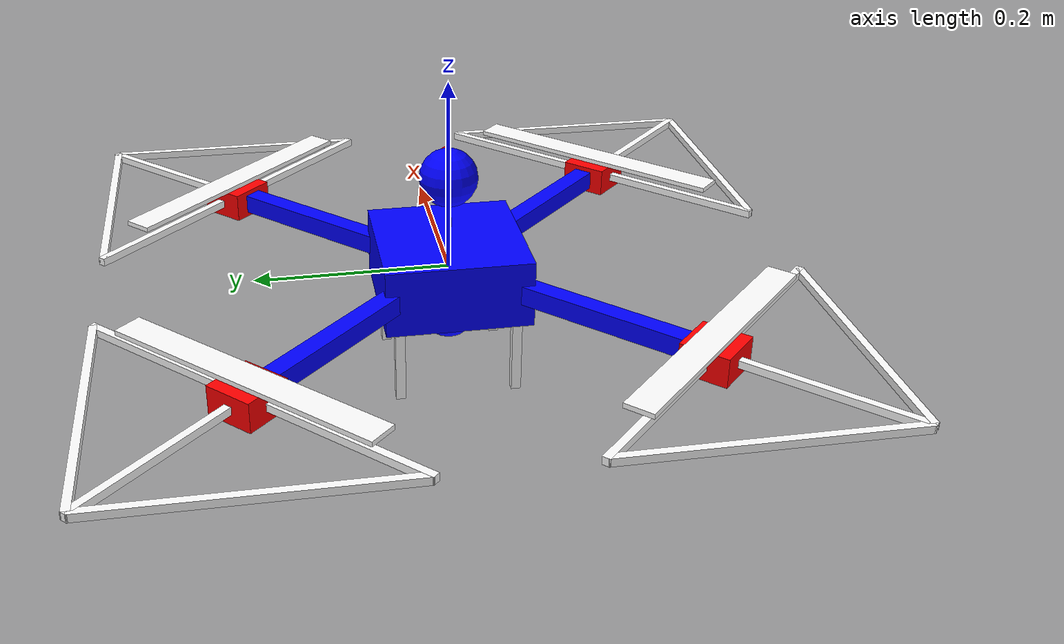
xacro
<robot name="quadcopter_wrs"
  xmlns:xacro="http://ros.org/wiki/xacro">
  <xacro:property name="side" value="0.5"/>

  <link name="BODY">
    <visual>
      <origin rpy="0 0 0" xyz="0 0 0"/>
      <geometry>
        <box size="0.15 0.15 0.07"/>
      </geometry>
      <material name="blue">
        <color rgba="0.0 0.0 1.0 1.0"/>
      </material>
    </visual>
  </link>

  <joint name="CAMERA_2" type="revolute">
    <parent link="BODY"/>
    <child link="CAMERA_2"/>
    <origin xyz="0 0 -0.05"/>
    <limit lower="${-pi}" upper="0" velocity="${pi/2}" effort="1"/>
    <axis xyz="0 -1 0"/>
  </joint>

  <joint name="CAMERA_3" type="revolute">
    <parent link="BODY"/>
    <child link="CAMERA_3"/>
    <origin xyz="0 0 0.10"/>
    <limit lower="${-pi}" upper="0" velocity="${pi/2}" effort="1"/>
    <axis xyz="0 -1 0"/>
  </joint>

  <link name="CAMERA_2">
    <visual>
      <origin rpy="0 0 0" xyz="0 0 0"/>
      <geometry>
        <sphere radius="0.03"/>
      </geometry>
      <material name="blue"/>
    </visual>
  </link>

  <joint name="CameraJoint" type="fixed">
    <parent link="CAMERA_2"/>
    <child link="Camera"/>
    <origin xyz="0.03 0 0" rpy="${-pi/2} 0 ${-pi/2}"/>
  </joint>

  <link name="Camera">
    <visual>
      <geometry>
        <cylinder radius="0.003" length="0.01"/>
      </geometry>
      <material name="red">
        <color rgba="1.0 0.0 0.0 1.0"/>
      </material>
    </visual>
  </link>

  <joint name="Camera2Joint" type="fixed">
    <parent link="CAMERA_2"/>
    <child link="Camera2"/>
    <origin xyz="0.02 0 -0.02" rpy="${-pi/2} 0 ${-pi/2}"/>
  </joint>

  <link name="Camera2">
    <visual>
      <geometry>
        <cylinder radius="0.003" length="0.01"/>
      </geometry>
      <material name="red"/>
    </visual>
  </link>

  <joint name="UpperRangeSensorJoint" type="fixed">
    <parent link="BODY"/>
    <child link="UpperRangeSensor"/>
    <origin xyz="0.00 0 0.05" rpy="0 0 0"/>
  </joint>

  <link name="UpperRangeSensor">
    <visual>
      <geometry>
        <cylinder radius="0.003" length="0.01"/>
      </geometry>
      <material name="red">
        <color rgba="1.0 0.0 0.0 1.0"/>
      </material>
    </visual>
  </link>

  <link name="CAMERA_3">
    <visual>
      <origin rpy="0 0 0" xyz="0 0 0"/>
      <geometry>
        <sphere radius="0.03"/>
      </geometry>
      <material name="blue"/>
    </visual>
  </link>

  <joint name="Camera3Joint" type="fixed">
    <parent link="CAMERA_3"/>
    <child link="Camera3"/>
    <origin xyz="0.02 0 0.02" rpy="${-pi/2} 0 ${-pi/2}"/>
  </joint>

  <link name="Camera3">
    <visual>
      <geometry>
        <cylinder radius="0.003" length="0.01"/>
      </geometry>
      <material name="red"/>
    </visual>
  </link>

  <!-- Legs -->
  <xacro:macro name="leg" params="name translation">
    <joint name="${name}Joint" type="fixed">
      <parent link="BODY"/>
      <child link="${name}"/>
      <origin xyz="${translation}"/>
    </joint>

    <link name="${name}">
      <visual>
        <geometry>
          <box size="0.01 0.01 0.08"/>
        </geometry>
        <material name="white">
          <color rgba="1.0 1.0 1.0 1.0"/>
        </material>
      </visual>
    </link>
  </xacro:macro>

  <xacro:leg name="LEG0" translation="0.06 -0.06 -0.075"/>
  <xacro:leg name="LEG1" translation="0.06 0.06 -0.075"/>
  <xacro:leg name="LEG2" translation="-0.06 0.06 -0.075"/>
  <xacro:leg name="LEG3" translation="-0.06 -0.06 -0.075"/>

  <!-- Arms -->
  <xacro:macro name="arm" params="name rotation">
    <joint name="${name}Joint" type="fixed">
      <parent link="BODY"/>
      <child link="${name}"/>
      <origin rpy="${rotation}"/>
    </joint>

    <link name="${name}">
      <visual>
        <geometry>
          <box size="0.02 0.6 0.02"/>
        </geometry>
        <material name="blue"/>
      </visual>
    </link>
  </xacro:macro>

  <xacro:arm name="ARM02" rotation="0 0 ${pi/4}"/>
  <xacro:arm name="ARM13" rotation="0 0 ${-pi/4}"/>

  <!-- Rotors -->
  <xacro:macro name="rotor" params="name parent translation">
    <joint name="${name}Joint" type="fixed">
      <parent link="${parent}"/>
      <child link="${name}"/>
      <origin xyz="${translation}"/>
    </joint>

    <link name="${name}">
      <visual>
        <geometry>
          <box size="0.05 0.05 0.03"/>
        </geometry>
        <material name="red"/>
      </visual>
    </link>
  </xacro:macro>

  <xacro:rotor name="ROTOR0" parent="ARM02" translation="0 -0.3 0"/>
  <xacro:rotor name="ROTOR1" parent="ARM13" translation="0 0.3 0"/>
  <xacro:rotor name="ROTOR2" parent="ARM02" translation="0 0.3 0"/>
  <xacro:rotor name="ROTOR3" parent="ARM13" translation="0 -0.3 0"/>

  <!-- Propellers -->
  <xacro:macro name="propeller" params="name parent">
    <joint name="${name}Joint" type="fixed">
      <parent link="${parent}"/>
      <child link="${name}"/>
      <origin xyz="0 0 0.02"/>
    </joint>

    <link name="${name}">
      <visual>
        <geometry>
          <box size="0.3 0.03 0.005"/>
        </geometry>
        <material name="white"/>
      </visual>
    </link>
  </xacro:macro>

  <xacro:propeller name="PROP0" parent="ROTOR0"/>
  <xacro:propeller name="PROP1" parent="ROTOR1"/>
  <xacro:propeller name="PROP2" parent="ROTOR2"/>
  <xacro:propeller name="PROP3" parent="ROTOR3"/>

  <!-- Guards -->
  <xacro:macro name="guard" params="name parent rotation">
    <joint name="${name}Joint" type="fixed">
      <parent link="${parent}"/>
      <child link="${name}"/>
      <origin rpy="${rotation}"/>
    </joint>

    <link name="${name}">
      <visual>
        <geometry>
          <box size="0.405 0.008 0.008"/>
        </geometry>
        <material name="white"/>
      </visual>
      <visual>
        <geometry>
          <box size="0.008 0.405 0.008"/>
        </geometry>
        <material name="white"/>
      </visual>
      <visual>
        <origin xyz="0.1 -0.1 0" rpy="0 0 ${pi/4}"/>
        <geometry>
          <box size="0.28284 0.008 0.008"/>
        </geometry>
        <material name="white"/>
      </visual>
      <visual>
        <origin xyz="-0.1 -0.1 0" rpy="0 0 ${3*pi/4}"/>
        <geometry>
          <box size="0.28284 0.008 0.008"/>
        </geometry>
        <material name="white"/>
      </visual>
    </link>
  </xacro:macro>

  <xacro:guard name="GUARD0" parent="ROTOR0" rotation="0 0 0"/>
  <xacro:guard name="GUARD1" parent="ROTOR1" rotation="0 0 ${pi}"/>
  <xacro:guard name="GUARD2" parent="ROTOR2" rotation="0 0 ${pi}"/>
  <xacro:guard name="GUARD3" parent="ROTOR3" rotation="0 0 0"/>
</robot>
